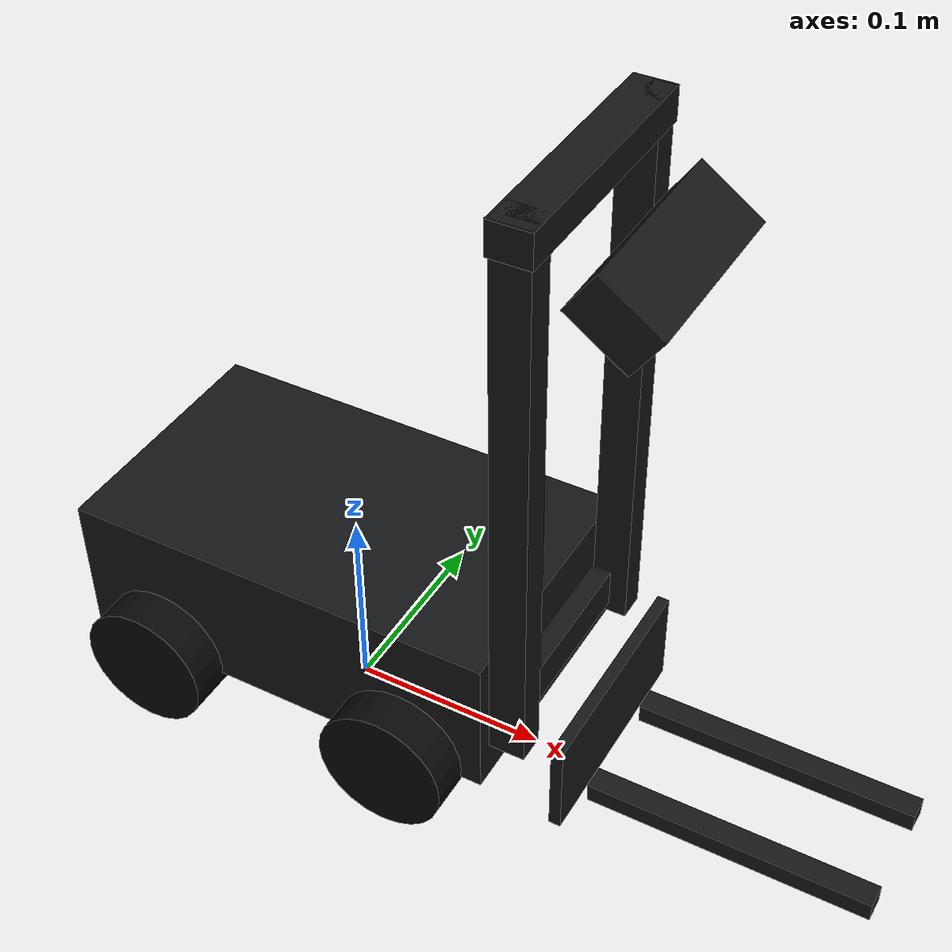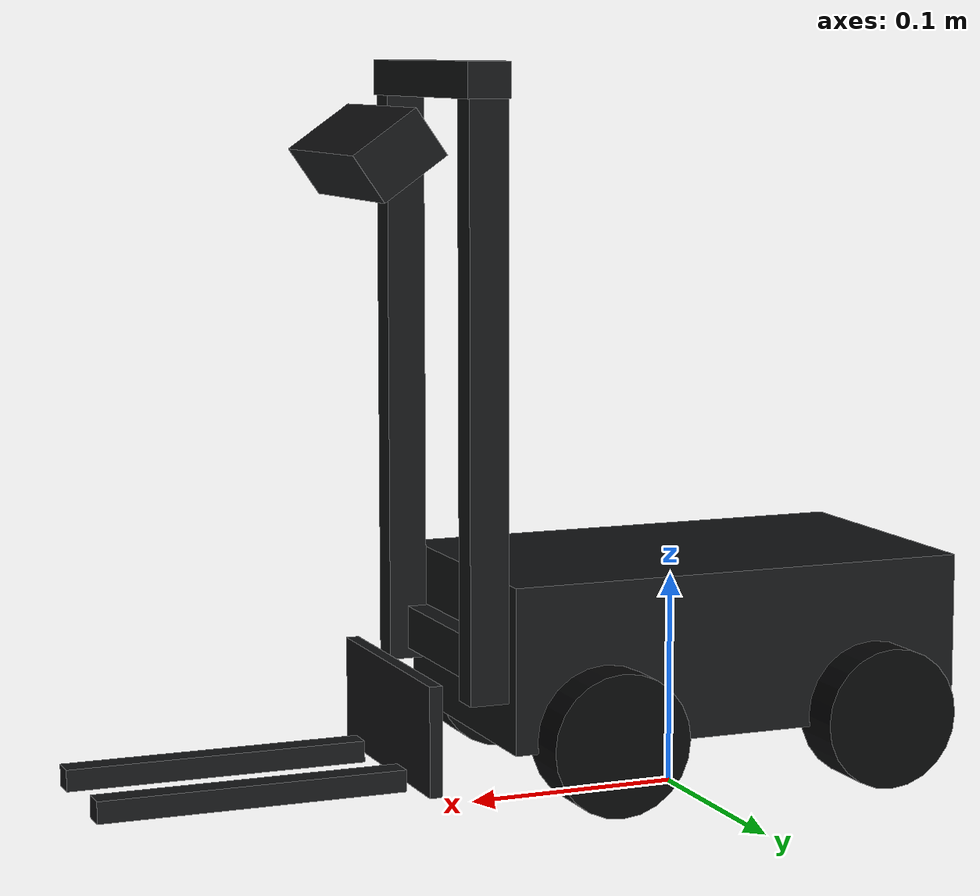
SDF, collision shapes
<?xml version="1.0"?>
<!-- Copyright (c) 2026 Hyunwoo Oh and PRJ ARANEUM contributors. All rights reserved. -->
<!-- SPDX-License-Identifier: LicenseRef-PRJ-ARANEUM-Team-Evaluation-1.0 -->
<sdf version="1.10" xmlns:gz="http://gazebosim.org/schema">
  <model name="hiwonder_mecanum_forklift">
    <link name="chassis">
      <pose>-0.005 0 0.075 0 0 0</pose>
      <inertial><pose>-0.035 0 0 0 0 0</pose><mass>3.5</mass><inertia><ixx>0.016</ixx><iyy>0.018</iyy><izz>0.025</izz></inertia></inertial>
      <!-- The collision envelope follows the measured 22 cm body, excluding mast and forks. -->
      <collision name="body_collision"><geometry><box><size>0.22 0.13 0.075</size></box></geometry></collision>

      <!-- Official Hiwonder MentorPi Mecanum chassis mesh; collision stays lightweight. -->
      <visual name="official_mentorpi_chassis">
        <pose>0 0 -0.014 0 0 0</pose>
        <geometry><mesh><uri>model://hiwonder_mecanum_forklift/meshes/mentorpi/base_link.STL</uri></mesh></geometry>
        <material><ambient>0.055 0.060 0.064 1</ambient><diffuse>0.075 0.080 0.085 1</diffuse><specular>0.18 0.18 0.18 1</specular></material>
      </visual>

      <!-- Flush rear receiver mates with either automatic charging bay. -->
      <visual name="charging_receiver_backing">
        <pose>-0.109 0 0.010 0 0 0</pose>
        <geometry><box><size>0.002 0.110 0.060</size></box></geometry>
        <material><ambient>0.025 0.030 0.033 1</ambient><diffuse>0.04 0.047 0.052 1</diffuse><specular>0.12 0.12 0.12 1</specular></material>
      </visual>
      <visual name="charging_receiver_left">
        <pose>-0.1097 0.031 0.010 0 0 0</pose>
        <geometry><box><size>0.001 0.027 0.038</size></box></geometry>
        <material><ambient>0.46 0.30 0.08 1</ambient><diffuse>0.68 0.46 0.14 1</diffuse><specular>0.48 0.38 0.20 1</specular></material>
      </visual>
      <visual name="charging_receiver_right">
        <pose>-0.1097 -0.031 0.010 0 0 0</pose>
        <geometry><box><size>0.001 0.027 0.038</size></box></geometry>
        <material><ambient>0.46 0.30 0.08 1</ambient><diffuse>0.68 0.46 0.14 1</diffuse><specular>0.48 0.38 0.20 1</specular></material>
      </visual>

      <visual name="raspberry_pi"><pose>-0.026 -0.006 0.018 0 0 0</pose><geometry><box><size>0.085 0.056 0.006</size></box></geometry><material><ambient>0.015 0.26 0.10 1</ambient><diffuse>0.020 0.34 0.13 1</diffuse></material></visual>
      <visual name="pi_usb_ports"><pose>-0.018 -0.039 0.019 0 0 0</pose><geometry><box><size>0.032 0.011 0.014</size></box></geometry><material><ambient>0.55 0.57 0.58 1</ambient><diffuse>0.68 0.70 0.71 1</diffuse><specular>0.35 0.35 0.35 1</specular></material></visual>
      <visual name="pi_ethernet_port"><pose>-0.052 -0.039 0.019 0 0 0</pose><geometry><box><size>0.020 0.012 0.016</size></box></geometry><material><ambient>0.50 0.52 0.54 1</ambient><diffuse>0.62 0.64 0.66 1</diffuse></material></visual>
      <visual name="pi_heatsink"><pose>-0.030 0.004 0.024 0 0 0</pose><geometry><box><size>0.036 0.032 0.010</size></box></geometry><material><ambient>0.055 0.060 0.065 1</ambient><diffuse>0.075 0.080 0.085 1</diffuse><specular>0.30 0.30 0.30 1</specular></material></visual>
      <visual name="motor_controller"><pose>0.050 0 0.017 0 0 0</pose><geometry><box><size>0.052 0.056 0.008</size></box></geometry><material><ambient>0.04 0.10 0.18 1</ambient><diffuse>0.05 0.14 0.24 1</diffuse></material></visual>
      <visual name="official_oradar_lidar">
        <pose>-0.012242 0 0.078501 0 0 0</pose>
        <geometry><mesh><uri>model://hiwonder_mecanum_forklift/meshes/mentorpi/lidar_Link.STL</uri></mesh></geometry>
        <material><ambient>0.025 0.028 0.032 1</ambient><diffuse>0.038 0.042 0.046 1</diffuse><specular>0.16 0.16 0.16 1</specular></material>
      </visual>

      <sensor name="lidar" type="gpu_lidar">
        <pose>-0.012242 0 0.080501 0 0 0</pose><topic>/forklift/scan</topic><update_rate>12</update_rate><always_on>true</always_on><visualize>true</visualize>
        <lidar><scan><horizontal><samples>360</samples><resolution>1</resolution><min_angle>-3.14159</min_angle><max_angle>3.14159</max_angle></horizontal></scan><range><min>0.03</min><max>8.0</max><resolution>0.005</resolution></range><noise><type>gaussian</type><mean>0</mean><stddev>0.002</stddev></noise></lidar>
      </sensor>
      <sensor name="imu" type="imu"><topic>/forklift/imu</topic><update_rate>50</update_rate><always_on>true</always_on></sensor>
    </link>

    <!-- Simple collision cylinders keep contact stable; capsules reproduce the angled mecanum rollers. -->
    <link name="front_left_wheel">
      <pose>0.06225 0.071 0.0425 -1.570796 0 0</pose>
      <inertial><mass>0.15</mass><inertia><ixx>0.00008</ixx><iyy>0.00008</iyy><izz>0.00008</izz></inertia></inertial>
      <collision name="collision">
        <geometry><cylinder><radius>0.0325</radius><length>0.028</length></cylinder></geometry>
        <surface><friction><ode><mu>1</mu><mu2>0</mu2><fdir1 gz:expressed_in="chassis">1 -1 0</fdir1></ode></friction></surface>
      </collision>
      <visual name="tire_core"><geometry><cylinder><radius>0.0305</radius><length>0.025</length></cylinder></geometry><material><ambient>0.018 0.020 0.022 1</ambient><diffuse>0.025 0.027 0.030 1</diffuse></material></visual>
      <visual name="hub"><geometry><cylinder><radius>0.0185</radius><length>0.030</length></cylinder></geometry><material><ambient>0.68 0.70 0.71 1</ambient><diffuse>0.88 0.89 0.90 1</diffuse><specular>0.30 0.30 0.30 1</specular></material></visual>
      <visual name="motor_hub"><geometry><cylinder><radius>0.0105</radius><length>0.032</length></cylinder></geometry><material><ambient>0.075 0.080 0.085 1</ambient><diffuse>0.095 0.100 0.105 1</diffuse></material></visual>
      <visual name="roller_01"><pose>0.026 0 0 0 0.78 1.570796</pose><geometry><capsule><radius>0.0045</radius><length>0.014</length></capsule></geometry><material><ambient>0.44 0.47 0.49 1</ambient><diffuse>0.58 0.61 0.63 1</diffuse><specular>0.22 0.22 0.22 1</specular></material></visual>
      <visual name="roller_02"><pose>0.018385 0.018385 0 0 0.78 2.356194</pose><geometry><capsule><radius>0.0045</radius><length>0.014</length></capsule></geometry><material><ambient>0.44 0.47 0.49 1</ambient><diffuse>0.58 0.61 0.63 1</diffuse><specular>0.22 0.22 0.22 1</specular></material></visual>
      <visual name="roller_03"><pose>0 0.026 0 0 0.78 3.141593</pose><geometry><capsule><radius>0.0045</radius><length>0.014</length></capsule></geometry><material><ambient>0.44 0.47 0.49 1</ambient><diffuse>0.58 0.61 0.63 1</diffuse><specular>0.22 0.22 0.22 1</specular></material></visual>
      <visual name="roller_04"><pose>-0.018385 0.018385 0 0 0.78 3.926991</pose><geometry><capsule><radius>0.0045</radius><length>0.014</length></capsule></geometry><material><ambient>0.44 0.47 0.49 1</ambient><diffuse>0.58 0.61 0.63 1</diffuse><specular>0.22 0.22 0.22 1</specular></material></visual>
      <visual name="roller_05"><pose>-0.026 0 0 0 0.78 4.712389</pose><geometry><capsule><radius>0.0045</radius><length>0.014</length></capsule></geometry><material><ambient>0.44 0.47 0.49 1</ambient><diffuse>0.58 0.61 0.63 1</diffuse><specular>0.22 0.22 0.22 1</specular></material></visual>
      <visual name="roller_06"><pose>-0.018385 -0.018385 0 0 0.78 5.497787</pose><geometry><capsule><radius>0.0045</radius><length>0.014</length></capsule></geometry><material><ambient>0.44 0.47 0.49 1</ambient><diffuse>0.58 0.61 0.63 1</diffuse><specular>0.22 0.22 0.22 1</specular></material></visual>
      <visual name="roller_07"><pose>0 -0.026 0 0 0.78 6.283185</pose><geometry><capsule><radius>0.0045</radius><length>0.014</length></capsule></geometry><material><ambient>0.44 0.47 0.49 1</ambient><diffuse>0.58 0.61 0.63 1</diffuse><specular>0.22 0.22 0.22 1</specular></material></visual>
      <visual name="roller_08"><pose>0.018385 -0.018385 0 0 0.78 7.068583</pose><geometry><capsule><radius>0.0045</radius><length>0.014</length></capsule></geometry><material><ambient>0.44 0.47 0.49 1</ambient><diffuse>0.58 0.61 0.63 1</diffuse><specular>0.22 0.22 0.22 1</specular></material></visual>
    </link>
    <link name="rear_left_wheel">
      <pose>-0.07225 0.071 0.0425 -1.570796 0 0</pose>
      <inertial><mass>0.15</mass><inertia><ixx>0.00008</ixx><iyy>0.00008</iyy><izz>0.00008</izz></inertia></inertial>
      <collision name="collision">
        <geometry><cylinder><radius>0.0325</radius><length>0.028</length></cylinder></geometry>
        <surface><friction><ode><mu>1</mu><mu2>0</mu2><fdir1 gz:expressed_in="chassis">1 1 0</fdir1></ode></friction></surface>
      </collision>
      <visual name="tire_core"><geometry><cylinder><radius>0.0305</radius><length>0.025</length></cylinder></geometry><material><ambient>0.018 0.020 0.022 1</ambient><diffuse>0.025 0.027 0.030 1</diffuse></material></visual>
      <visual name="hub"><geometry><cylinder><radius>0.0185</radius><length>0.030</length></cylinder></geometry><material><ambient>0.68 0.70 0.71 1</ambient><diffuse>0.88 0.89 0.90 1</diffuse><specular>0.30 0.30 0.30 1</specular></material></visual>
      <visual name="motor_hub"><geometry><cylinder><radius>0.0105</radius><length>0.032</length></cylinder></geometry><material><ambient>0.075 0.080 0.085 1</ambient><diffuse>0.095 0.100 0.105 1</diffuse></material></visual>
      <visual name="roller_01"><pose>0.026 0 0 0 0.78 -1.570796</pose><geometry><capsule><radius>0.0045</radius><length>0.014</length></capsule></geometry><material><ambient>0.44 0.47 0.49 1</ambient><diffuse>0.58 0.61 0.63 1</diffuse><specular>0.22 0.22 0.22 1</specular></material></visual>
      <visual name="roller_02"><pose>0.018385 0.018385 0 0 0.78 -0.785398</pose><geometry><capsule><radius>0.0045</radius><length>0.014</length></capsule></geometry><material><ambient>0.44 0.47 0.49 1</ambient><diffuse>0.58 0.61 0.63 1</diffuse><specular>0.22 0.22 0.22 1</specular></material></visual>
      <visual name="roller_03"><pose>0 0.026 0 0 0.78 0</pose><geometry><capsule><radius>0.0045</radius><length>0.014</length></capsule></geometry><material><ambient>0.44 0.47 0.49 1</ambient><diffuse>0.58 0.61 0.63 1</diffuse><specular>0.22 0.22 0.22 1</specular></material></visual>
      <visual name="roller_04"><pose>-0.018385 0.018385 0 0 0.78 0.785398</pose><geometry><capsule><radius>0.0045</radius><length>0.014</length></capsule></geometry><material><ambient>0.44 0.47 0.49 1</ambient><diffuse>0.58 0.61 0.63 1</diffuse><specular>0.22 0.22 0.22 1</specular></material></visual>
      <visual name="roller_05"><pose>-0.026 0 0 0 0.78 1.570796</pose><geometry><capsule><radius>0.0045</radius><length>0.014</length></capsule></geometry><material><ambient>0.44 0.47 0.49 1</ambient><diffuse>0.58 0.61 0.63 1</diffuse><specular>0.22 0.22 0.22 1</specular></material></visual>
      <visual name="roller_06"><pose>-0.018385 -0.018385 0 0 0.78 2.356194</pose><geometry><capsule><radius>0.0045</radius><length>0.014</length></capsule></geometry><material><ambient>0.44 0.47 0.49 1</ambient><diffuse>0.58 0.61 0.63 1</diffuse><specular>0.22 0.22 0.22 1</specular></material></visual>
      <visual name="roller_07"><pose>0 -0.026 0 0 0.78 3.141593</pose><geometry><capsule><radius>0.0045</radius><length>0.014</length></capsule></geometry><material><ambient>0.44 0.47 0.49 1</ambient><diffuse>0.58 0.61 0.63 1</diffuse><specular>0.22 0.22 0.22 1</specular></material></visual>
      <visual name="roller_08"><pose>0.018385 -0.018385 0 0 0.78 3.926991</pose><geometry><capsule><radius>0.0045</radius><length>0.014</length></capsule></geometry><material><ambient>0.44 0.47 0.49 1</ambient><diffuse>0.58 0.61 0.63 1</diffuse><specular>0.22 0.22 0.22 1</specular></material></visual>
    </link>
    <link name="front_right_wheel">
      <pose>0.06225 -0.071 0.0425 -1.570796 0 0</pose>
      <inertial><mass>0.15</mass><inertia><ixx>0.00008</ixx><iyy>0.00008</iyy><izz>0.00008</izz></inertia></inertial>
      <collision name="collision">
        <geometry><cylinder><radius>0.0325</radius><length>0.028</length></cylinder></geometry>
        <surface><friction><ode><mu>1</mu><mu2>0</mu2><fdir1 gz:expressed_in="chassis">1 1 0</fdir1></ode></friction></surface>
      </collision>
      <visual name="tire_core"><geometry><cylinder><radius>0.0305</radius><length>0.025</length></cylinder></geometry><material><ambient>0.018 0.020 0.022 1</ambient><diffuse>0.025 0.027 0.030 1</diffuse></material></visual>
      <visual name="hub"><geometry><cylinder><radius>0.0185</radius><length>0.030</length></cylinder></geometry><material><ambient>0.68 0.70 0.71 1</ambient><diffuse>0.88 0.89 0.90 1</diffuse><specular>0.30 0.30 0.30 1</specular></material></visual>
      <visual name="motor_hub"><geometry><cylinder><radius>0.0105</radius><length>0.032</length></cylinder></geometry><material><ambient>0.075 0.080 0.085 1</ambient><diffuse>0.095 0.100 0.105 1</diffuse></material></visual>
      <visual name="roller_01"><pose>0.026 0 0 0 0.78 -1.570796</pose><geometry><capsule><radius>0.0045</radius><length>0.014</length></capsule></geometry><material><ambient>0.44 0.47 0.49 1</ambient><diffuse>0.58 0.61 0.63 1</diffuse><specular>0.22 0.22 0.22 1</specular></material></visual>
      <visual name="roller_02"><pose>0.018385 0.018385 0 0 0.78 -0.785398</pose><geometry><capsule><radius>0.0045</radius><length>0.014</length></capsule></geometry><material><ambient>0.44 0.47 0.49 1</ambient><diffuse>0.58 0.61 0.63 1</diffuse><specular>0.22 0.22 0.22 1</specular></material></visual>
      <visual name="roller_03"><pose>0 0.026 0 0 0.78 0</pose><geometry><capsule><radius>0.0045</radius><length>0.014</length></capsule></geometry><material><ambient>0.44 0.47 0.49 1</ambient><diffuse>0.58 0.61 0.63 1</diffuse><specular>0.22 0.22 0.22 1</specular></material></visual>
      <visual name="roller_04"><pose>-0.018385 0.018385 0 0 0.78 0.785398</pose><geometry><capsule><radius>0.0045</radius><length>0.014</length></capsule></geometry><material><ambient>0.44 0.47 0.49 1</ambient><diffuse>0.58 0.61 0.63 1</diffuse><specular>0.22 0.22 0.22 1</specular></material></visual>
      <visual name="roller_05"><pose>-0.026 0 0 0 0.78 1.570796</pose><geometry><capsule><radius>0.0045</radius><length>0.014</length></capsule></geometry><material><ambient>0.44 0.47 0.49 1</ambient><diffuse>0.58 0.61 0.63 1</diffuse><specular>0.22 0.22 0.22 1</specular></material></visual>
      <visual name="roller_06"><pose>-0.018385 -0.018385 0 0 0.78 2.356194</pose><geometry><capsule><radius>0.0045</radius><length>0.014</length></capsule></geometry><material><ambient>0.44 0.47 0.49 1</ambient><diffuse>0.58 0.61 0.63 1</diffuse><specular>0.22 0.22 0.22 1</specular></material></visual>
      <visual name="roller_07"><pose>0 -0.026 0 0 0.78 3.141593</pose><geometry><capsule><radius>0.0045</radius><length>0.014</length></capsule></geometry><material><ambient>0.44 0.47 0.49 1</ambient><diffuse>0.58 0.61 0.63 1</diffuse><specular>0.22 0.22 0.22 1</specular></material></visual>
      <visual name="roller_08"><pose>0.018385 -0.018385 0 0 0.78 3.926991</pose><geometry><capsule><radius>0.0045</radius><length>0.014</length></capsule></geometry><material><ambient>0.44 0.47 0.49 1</ambient><diffuse>0.58 0.61 0.63 1</diffuse><specular>0.22 0.22 0.22 1</specular></material></visual>
    </link>
    <link name="rear_right_wheel">
      <pose>-0.07225 -0.071 0.0425 -1.570796 0 0</pose>
      <inertial><mass>0.15</mass><inertia><ixx>0.00008</ixx><iyy>0.00008</iyy><izz>0.00008</izz></inertia></inertial>
      <collision name="collision">
        <geometry><cylinder><radius>0.0325</radius><length>0.028</length></cylinder></geometry>
        <surface><friction><ode><mu>1</mu><mu2>0</mu2><fdir1 gz:expressed_in="chassis">1 -1 0</fdir1></ode></friction></surface>
      </collision>
      <visual name="tire_core"><geometry><cylinder><radius>0.0305</radius><length>0.025</length></cylinder></geometry><material><ambient>0.018 0.020 0.022 1</ambient><diffuse>0.025 0.027 0.030 1</diffuse></material></visual>
      <visual name="hub"><geometry><cylinder><radius>0.0185</radius><length>0.030</length></cylinder></geometry><material><ambient>0.68 0.70 0.71 1</ambient><diffuse>0.88 0.89 0.90 1</diffuse><specular>0.30 0.30 0.30 1</specular></material></visual>
      <visual name="motor_hub"><geometry><cylinder><radius>0.0105</radius><length>0.032</length></cylinder></geometry><material><ambient>0.075 0.080 0.085 1</ambient><diffuse>0.095 0.100 0.105 1</diffuse></material></visual>
      <visual name="roller_01"><pose>0.026 0 0 0 0.78 1.570796</pose><geometry><capsule><radius>0.0045</radius><length>0.014</length></capsule></geometry><material><ambient>0.44 0.47 0.49 1</ambient><diffuse>0.58 0.61 0.63 1</diffuse><specular>0.22 0.22 0.22 1</specular></material></visual>
      <visual name="roller_02"><pose>0.018385 0.018385 0 0 0.78 2.356194</pose><geometry><capsule><radius>0.0045</radius><length>0.014</length></capsule></geometry><material><ambient>0.44 0.47 0.49 1</ambient><diffuse>0.58 0.61 0.63 1</diffuse><specular>0.22 0.22 0.22 1</specular></material></visual>
      <visual name="roller_03"><pose>0 0.026 0 0 0.78 3.141593</pose><geometry><capsule><radius>0.0045</radius><length>0.014</length></capsule></geometry><material><ambient>0.44 0.47 0.49 1</ambient><diffuse>0.58 0.61 0.63 1</diffuse><specular>0.22 0.22 0.22 1</specular></material></visual>
      <visual name="roller_04"><pose>-0.018385 0.018385 0 0 0.78 3.926991</pose><geometry><capsule><radius>0.0045</radius><length>0.014</length></capsule></geometry><material><ambient>0.44 0.47 0.49 1</ambient><diffuse>0.58 0.61 0.63 1</diffuse><specular>0.22 0.22 0.22 1</specular></material></visual>
      <visual name="roller_05"><pose>-0.026 0 0 0 0.78 4.712389</pose><geometry><capsule><radius>0.0045</radius><length>0.014</length></capsule></geometry><material><ambient>0.44 0.47 0.49 1</ambient><diffuse>0.58 0.61 0.63 1</diffuse><specular>0.22 0.22 0.22 1</specular></material></visual>
      <visual name="roller_06"><pose>-0.018385 -0.018385 0 0 0.78 5.497787</pose><geometry><capsule><radius>0.0045</radius><length>0.014</length></capsule></geometry><material><ambient>0.44 0.47 0.49 1</ambient><diffuse>0.58 0.61 0.63 1</diffuse><specular>0.22 0.22 0.22 1</specular></material></visual>
      <visual name="roller_07"><pose>0 -0.026 0 0 0.78 6.283185</pose><geometry><capsule><radius>0.0045</radius><length>0.014</length></capsule></geometry><material><ambient>0.44 0.47 0.49 1</ambient><diffuse>0.58 0.61 0.63 1</diffuse><specular>0.22 0.22 0.22 1</specular></material></visual>
      <visual name="roller_08"><pose>0.018385 -0.018385 0 0 0.78 7.068583</pose><geometry><capsule><radius>0.0045</radius><length>0.014</length></capsule></geometry><material><ambient>0.44 0.47 0.49 1</ambient><diffuse>0.58 0.61 0.63 1</diffuse><specular>0.22 0.22 0.22 1</specular></material></visual>
    </link>

    <link name="lift_mast">
      <!-- The mast base overlaps the measured chassis nose so the forklift is one connected assembly. -->
      <pose>0.115 0 0.20 0 0 0</pose>
      <inertial><mass>0.35</mass><inertia><ixx>0.003</ixx><iyy>0.003</iyy><izz>0.001</izz></inertia></inertial>
      <collision name="mast_mount_collision"><pose>-0.020 0 -0.125 0 0 0</pose><geometry><box><size>0.04 0.11 0.020</size></box></geometry></collision>
      <collision name="left_rail_collision"><pose>0 0.052 0 0 0 0</pose><geometry><box><size>0.018 0.014 0.28</size></box></geometry></collision>
      <collision name="right_rail_collision"><pose>0 -0.052 0 0 0 0</pose><geometry><box><size>0.018 0.014 0.28</size></box></geometry></collision>
      <collision name="top_crossbar_collision"><pose>0 0 0.132 0 0 0</pose><geometry><box><size>0.020 0.120 0.016</size></box></geometry></collision>

      <visual name="mast_mount"><pose>-0.020 0 -0.125 0 0 0</pose><geometry><box><size>0.04 0.11 0.020</size></box></geometry><material><ambient>0.055 0.060 0.065 1</ambient><diffuse>0.075 0.080 0.085 1</diffuse></material></visual>
      <visual name="lift_motor_left"><pose>-0.012 0.041 -0.105 0 0 0</pose><geometry><box><size>0.038 0.026 0.038</size></box></geometry><material><ambient>0.78 0.47 0.015 1</ambient><diffuse>0.96 0.59 0.020 1</diffuse></material></visual>
      <visual name="lift_motor_right"><pose>-0.012 -0.041 -0.105 0 0 0</pose><geometry><box><size>0.038 0.026 0.038</size></box></geometry><material><ambient>0.78 0.47 0.015 1</ambient><diffuse>0.96 0.59 0.020 1</diffuse></material></visual>
      <visual name="left_rail"><pose>0 0.052 0 0 0 0</pose><geometry><box><size>0.018 0.014 0.28</size></box></geometry><material><ambient>0.075 0.080 0.085 1</ambient><diffuse>0.095 0.100 0.105 1</diffuse><specular>0.24 0.24 0.24 1</specular></material></visual>
      <visual name="right_rail"><pose>0 -0.052 0 0 0 0</pose><geometry><box><size>0.018 0.014 0.28</size></box></geometry><material><ambient>0.075 0.080 0.085 1</ambient><diffuse>0.095 0.100 0.105 1</diffuse><specular>0.24 0.24 0.24 1</specular></material></visual>
      <visual name="top_crossbar"><pose>0 0 0.132 0 0 0</pose><geometry><box><size>0.020 0.120 0.016</size></box></geometry><material><ambient>0.045 0.050 0.055 1</ambient><diffuse>0.065 0.070 0.075 1</diffuse><specular>0.24 0.24 0.24 1</specular></material></visual>
      <visual name="inner_left_rail"><pose>0.012 0.034 -0.010 0 0 0</pose><geometry><box><size>0.010 0.010 0.235</size></box></geometry><material><ambient>0.48 0.51 0.54 1</ambient><diffuse>0.58 0.61 0.64 1</diffuse><specular>0.28 0.28 0.28 1</specular></material></visual>
      <visual name="inner_right_rail"><pose>0.012 -0.034 -0.010 0 0 0</pose><geometry><box><size>0.010 0.010 0.235</size></box></geometry><material><ambient>0.48 0.51 0.54 1</ambient><diffuse>0.58 0.61 0.64 1</diffuse><specular>0.28 0.28 0.28 1</specular></material></visual>
      <visual name="hydraulic_body"><pose>-0.010 0 -0.012 0 0 0</pose><geometry><cylinder><radius>0.008</radius><length>0.205</length></cylinder></geometry><material><ambient>0.045 0.050 0.055 1</ambient><diffuse>0.060 0.065 0.070 1</diffuse></material></visual>
      <visual name="hydraulic_rod"><pose>-0.010 0 0.095 0 0 0</pose><geometry><cylinder><radius>0.0045</radius><length>0.075</length></cylinder></geometry><material><ambient>0.62 0.65 0.67 1</ambient><diffuse>0.76 0.78 0.80 1</diffuse><specular>0.45 0.45 0.45 1</specular></material></visual>
      <!-- The former exposed rod tip is enclosed below the crossbar; a compact red safety beacon occupies the visible top position. -->
      <visual name="warning_beacon_base"><pose>-0.004 0 0.143 0 0 0</pose><geometry><cylinder><radius>0.009</radius><length>0.006</length></cylinder></geometry><material><ambient>0.035 0.038 0.041 1</ambient><diffuse>0.055 0.058 0.061 1</diffuse><specular>0.28 0.28 0.28 1</specular></material></visual>
      <visual name="warning_beacon_lens"><pose>-0.004 0 0.152 0 0 0</pose><geometry><cylinder><radius>0.0075</radius><length>0.012</length></cylinder></geometry><transparency>0.08</transparency><material><ambient>0.72 0.01 0.01 0.92</ambient><diffuse>1.00 0.025 0.018 0.92</diffuse><emissive>0.58 0.006 0.004 1</emissive><specular>0.36 0.16 0.16 1</specular></material></visual>
      <visual name="warning_beacon_cap"><pose>-0.004 0 0.158 0 0 0</pose><geometry><sphere><radius>0.0075</radius></sphere></geometry><transparency>0.08</transparency><material><ambient>0.72 0.01 0.01 0.92</ambient><diffuse>1.00 0.025 0.018 0.92</diffuse><emissive>0.58 0.006 0.004 1</emissive><specular>0.36 0.16 0.16 1</specular></material></visual>
      <visual name="pulley_left"><pose>0.012 0.025 0.119 1.570796 0 0</pose><geometry><cylinder><radius>0.008</radius><length>0.010</length></cylinder></geometry><material><ambient>0.12 0.13 0.14 1</ambient><diffuse>0.16 0.17 0.18 1</diffuse></material></visual>
      <visual name="pulley_right"><pose>0.012 -0.025 0.119 1.570796 0 0</pose><geometry><cylinder><radius>0.008</radius><length>0.010</length></cylinder></geometry><material><ambient>0.12 0.13 0.14 1</ambient><diffuse>0.16 0.17 0.18 1</diffuse></material></visual>
      <visual name="chain_left"><pose>0.021 0.025 -0.005 0 0 0</pose><geometry><box><size>0.003 0.003 0.238</size></box></geometry><material><ambient>0.025 0.025 0.025 1</ambient><diffuse>0.035 0.035 0.035 1</diffuse></material></visual>
      <visual name="chain_right"><pose>0.021 -0.025 -0.005 0 0 0</pose><geometry><box><size>0.003 0.003 0.238</size></box></geometry><material><ambient>0.025 0.025 0.025 1</ambient><diffuse>0.035 0.035 0.035 1</diffuse></material></visual>

      <!-- The RGB-D camera is fixed on top of the fork mount, aligned with the carriage in X. -->
      <visual name="camera_yellow_bracket"><pose>0.024 0 0.117 0 0.610865 0</pose><geometry><box><size>0.022 0.104 0.007</size></box></geometry><material><ambient>0.72 0.43 0.01 1</ambient><diffuse>0.90 0.54 0.02 1</diffuse></material></visual>
      <visual name="camera_mount_left"><pose>0.028 0.045 0.110 0 0.610865 0</pose><geometry><box><size>0.020 0.006 0.025</size></box></geometry><material><ambient>0.07 0.08 0.09 1</ambient><diffuse>0.10 0.11 0.12 1</diffuse></material></visual>
      <visual name="camera_mount_right"><pose>0.028 -0.045 0.110 0 0.610865 0</pose><geometry><box><size>0.020 0.006 0.025</size></box></geometry><material><ambient>0.07 0.08 0.09 1</ambient><diffuse>0.10 0.11 0.12 1</diffuse></material></visual>
      <collision name="depth_camera_collision"><pose>0.035 0 0.100 0 0.610865 0</pose><geometry><box><size>0.035 0.09 0.025</size></box></geometry></collision>
      <visual name="official_depth_camera"><pose>0.035 0 0.100 0 0.610865 0</pose><geometry><mesh><uri>model://hiwonder_mecanum_forklift/meshes/mentorpi/cam_Link.STL</uri></mesh></geometry><material><ambient>0.42 0.45 0.47 1</ambient><diffuse>0.58 0.61 0.63 1</diffuse><specular>0.28 0.28 0.28 1</specular></material></visual>
      <!-- Three flush pieces form one rounded dark-glass face instead of a floating rectangular plate. -->
      <visual name="depth_camera_bezel_center"><pose>0.04125 0 0.08446 0 0.610865 0</pose><geometry><box><size>0.0012 0.067 0.019</size></box></geometry><material><ambient>0.022 0.028 0.034 1</ambient><diffuse>0.032 0.041 0.049 1</diffuse><specular>0.22 0.25 0.28 1</specular></material></visual>
      <visual name="depth_camera_bezel_left_end"><pose>0.04125 0.0335 0.08446 0 2.181661 0</pose><geometry><cylinder><radius>0.0095</radius><length>0.0012</length></cylinder></geometry><material><ambient>0.022 0.028 0.034 1</ambient><diffuse>0.032 0.041 0.049 1</diffuse><specular>0.22 0.25 0.28 1</specular></material></visual>
      <visual name="depth_camera_bezel_right_end"><pose>0.04125 -0.0335 0.08446 0 2.181661 0</pose><geometry><cylinder><radius>0.0095</radius><length>0.0012</length></cylinder></geometry><material><ambient>0.022 0.028 0.034 1</ambient><diffuse>0.032 0.041 0.049 1</diffuse><specular>0.22 0.25 0.28 1</specular></material></visual>
      <visual name="depth_camera_lens_left"><pose>0.04207 0.027 0.08389 0 2.181661 0</pose><geometry><cylinder><radius>0.0052</radius><length>0.002</length></cylinder></geometry><material><ambient>0.004 0.020 0.040 1</ambient><diffuse>0.010 0.055 0.100 1</diffuse><specular>0.35 0.45 0.55 1</specular></material></visual>
      <visual name="depth_camera_lens_center"><pose>0.04207 0 0.08389 0 2.181661 0</pose><geometry><cylinder><radius>0.0042</radius><length>0.002</length></cylinder></geometry><material><ambient>0.012 0.030 0.045 1</ambient><diffuse>0.018 0.070 0.105 1</diffuse></material></visual>
      <visual name="depth_camera_lens_right"><pose>0.04207 -0.027 0.08389 0 2.181661 0</pose><geometry><cylinder><radius>0.0052</radius><length>0.002</length></cylinder></geometry><material><ambient>0.004 0.020 0.040 1</ambient><diffuse>0.010 0.055 0.100 1</diffuse><specular>0.35 0.45 0.55 1</specular></material></visual>
      <visual name="depth_camera_status_led"><pose>0.03776 0 0.07774 0 2.181661 0</pose><geometry><cylinder><radius>0.0016</radius><length>0.002</length></cylinder></geometry><material><ambient>0.01 0.42 0.12 1</ambient><diffuse>0.02 0.70 0.20 1</diffuse><emissive>0.01 0.30 0.08 1</emissive></material></visual>
      <sensor name="depth_camera" type="rgbd_camera">
        <!-- Gazebo cameras look along +X; positive pitch points the optical axis 35 degrees down. -->
        <pose>0.04207 0 0.08389 0 0.610865 0</pose>
        <topic>/forklift/depth_camera</topic>
        <update_rate>20</update_rate><always_on>true</always_on><visualize>false</visualize>
        <camera><horizontal_fov>1.28805</horizontal_fov><image><width>640</width><height>480</height><format>R8G8B8</format></image><clip><near>0.20</near><far>4.0</far></clip></camera>
      </sensor>
    </link>

    <link name="fork_carriage">
      <!-- Corrected source fork length is 14 cm; the complete footprint remains about 17x40 cm. -->
      <pose>0.145 0 0.045 0 0 0</pose><inertial><mass>0.35</mass><inertia><ixx>0.001</ixx><iyy>0.004</iyy><izz>0.004</izz></inertia></inertial>
      <collision name="carriage_collision"><pose>-0.006 0 0 0 0 0</pose><geometry><box><size>0.006 0.112 0.050</size></box></geometry></collision>
      <collision name="left_fork_collision"><pose>0.070 0.0282 -0.022 0 0 0</pose><geometry><box><size>0.14 0.012 0.010</size></box></geometry><surface><friction><ode><mu>1.5</mu><mu2>1.5</mu2></ode></friction></surface></collision>
      <collision name="right_fork_collision"><pose>0.070 -0.0282 -0.022 0 0 0</pose><geometry><box><size>0.14 0.012 0.010</size></box></geometry><surface><friction><ode><mu>1.5</mu><mu2>1.5</mu2></ode></friction></surface></collision>
      <visual name="carriage"><geometry><box><size>0.018 0.112 0.050</size></box></geometry><material><ambient>0.055 0.060 0.065 1</ambient><diffuse>0.080 0.085 0.090 1</diffuse><specular>0.20 0.20 0.20 1</specular></material></visual>
      <visual name="backrest_left"><pose>-0.001 0.052 0.052 0 0 0</pose><geometry><box><size>0.012 0.010 0.105</size></box></geometry><material><ambient>0.075 0.080 0.085 1</ambient><diffuse>0.095 0.100 0.105 1</diffuse></material></visual>
      <visual name="backrest_right"><pose>-0.001 -0.052 0.052 0 0 0</pose><geometry><box><size>0.012 0.010 0.105</size></box></geometry><material><ambient>0.075 0.080 0.085 1</ambient><diffuse>0.095 0.100 0.105 1</diffuse></material></visual>
      <visual name="backrest_top"><pose>-0.001 0 0.102 0 0 0</pose><geometry><box><size>0.012 0.114 0.010</size></box></geometry><material><ambient>0.075 0.080 0.085 1</ambient><diffuse>0.095 0.100 0.105 1</diffuse></material></visual>
      <visual name="backrest_middle"><pose>-0.001 0 0.060 0 0 0</pose><geometry><box><size>0.010 0.105 0.008</size></box></geometry><material><ambient>0.075 0.080 0.085 1</ambient><diffuse>0.095 0.100 0.105 1</diffuse></material></visual>
      <visual name="left_fork"><pose>0.070 0.0282 -0.022 0 0 0</pose><geometry><box><size>0.14 0.012 0.010</size></box></geometry><material><ambient>0.12 0.13 0.14 1</ambient><diffuse>0.17 0.18 0.19 1</diffuse><specular>0.22 0.22 0.22 1</specular></material></visual>
      <visual name="right_fork"><pose>0.070 -0.0282 -0.022 0 0 0</pose><geometry><box><size>0.14 0.012 0.010</size></box></geometry><material><ambient>0.12 0.13 0.14 1</ambient><diffuse>0.17 0.18 0.19 1</diffuse><specular>0.22 0.22 0.22 1</specular></material></visual>
    </link>

    <joint name="front_left_wheel_joint" type="revolute"><parent>chassis</parent><child>front_left_wheel</child><axis><xyz>0 0 1</xyz></axis></joint>
    <joint name="rear_left_wheel_joint" type="revolute"><parent>chassis</parent><child>rear_left_wheel</child><axis><xyz>0 0 1</xyz></axis></joint>
    <joint name="front_right_wheel_joint" type="revolute"><parent>chassis</parent><child>front_right_wheel</child><axis><xyz>0 0 1</xyz></axis></joint>
    <joint name="rear_right_wheel_joint" type="revolute"><parent>chassis</parent><child>rear_right_wheel</child><axis><xyz>0 0 1</xyz></axis></joint>
    <joint name="mast_fixed" type="fixed"><parent>chassis</parent><child>lift_mast</child></joint>
    <joint name="lift_joint" type="prismatic"><parent>lift_mast</parent><child>fork_carriage</child><axis><xyz>0 0 1</xyz><limit><lower>0</lower><upper>0.12</upper><effort>120</effort><velocity>0.12</velocity></limit><dynamics><damping>6</damping></dynamics></axis></joint>

    <plugin filename="gz-sim-mecanum-drive-system" name="gz::sim::systems::MecanumDrive"><front_left_joint>front_left_wheel_joint</front_left_joint><front_right_joint>front_right_wheel_joint</front_right_joint><back_left_joint>rear_left_wheel_joint</back_left_joint><back_right_joint>rear_right_wheel_joint</back_right_joint><wheel_separation>0.142</wheel_separation><wheelbase>0.1345</wheelbase><wheel_radius>0.0325</wheel_radius><min_acceleration>-0.4</min_acceleration><max_acceleration>0.4</max_acceleration><topic>/forklift/cmd_vel</topic></plugin>
    <plugin filename="gz-sim-joint-position-controller-system" name="gz::sim::systems::JointPositionController"><joint_name>lift_joint</joint_name><topic>/forklift/lift_position</topic><p_gain>600</p_gain><i_gain>5</i_gain><d_gain>60</d_gain><cmd_max>120</cmd_max><cmd_min>-120</cmd_min></plugin>
  </model>
</sdf>
